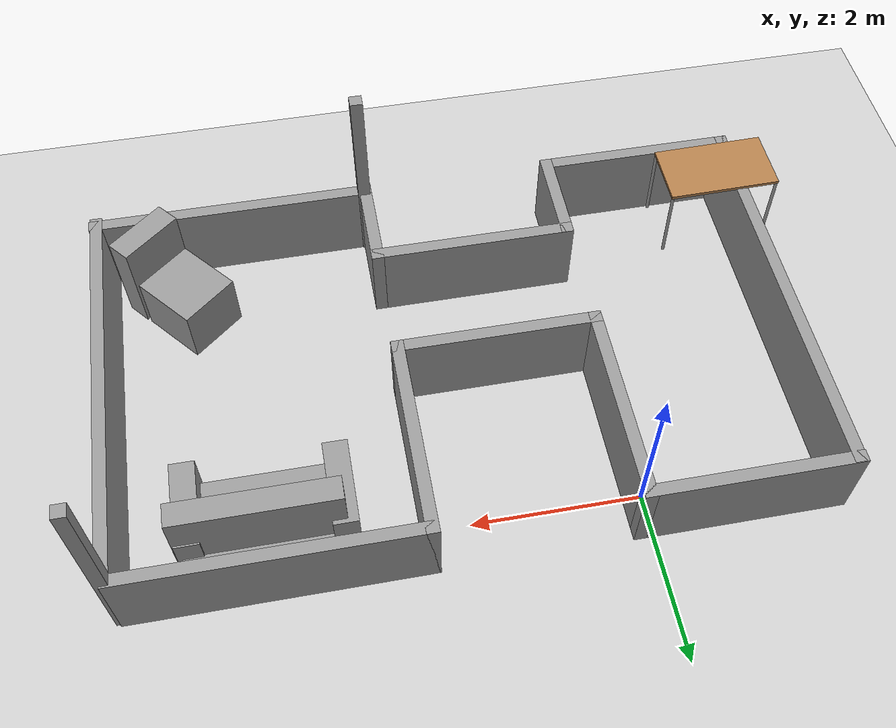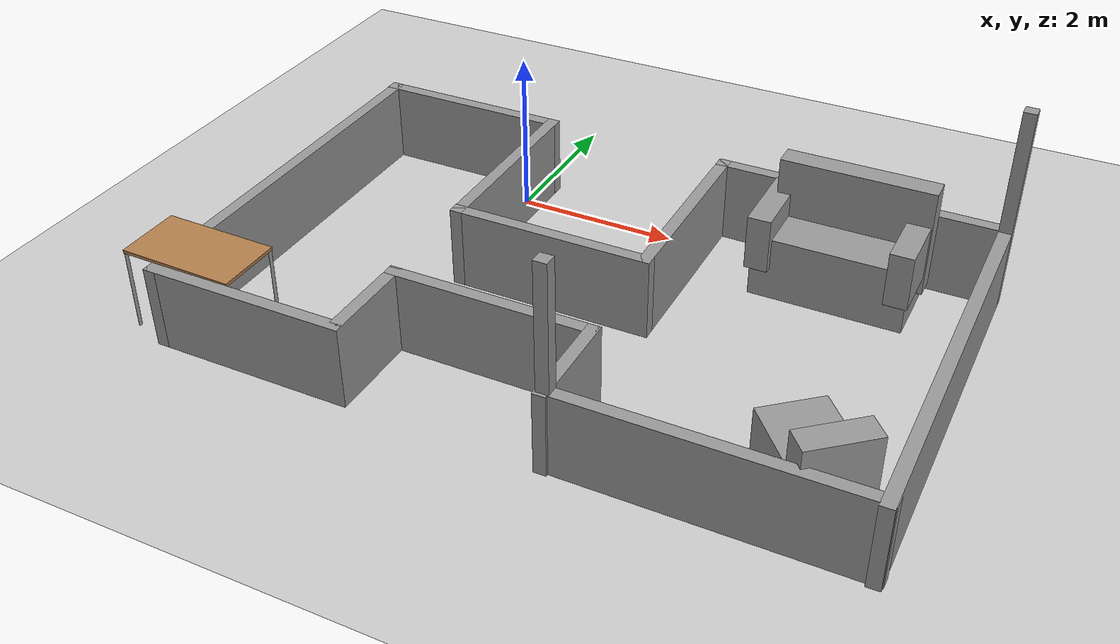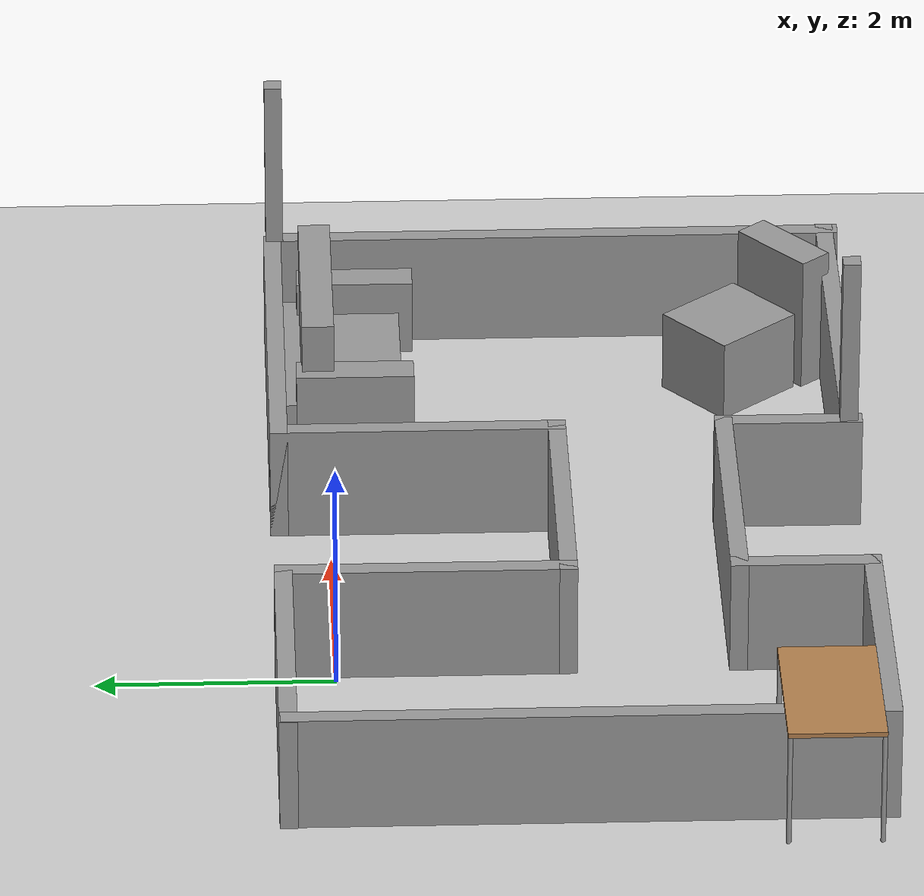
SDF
<sdf version="1.6">
 <world name="default">
  <light name="sun" type="directional">
   <pose>0 0 10 0 -0 0</pose>
   <diffuse>0.8 0.8 0.8 1</diffuse>
   <specular>0.1 0.1 0.1 1</specular>
   <attenuation>
    <range>1000</range>
    <constant>0.9</constant>
    <linear>0.01</linear>
    <quadratic>0.001</quadratic>
   </attenuation>
   <direction>-0.5 0.5 -1</direction>
  </light>
  <model name="ground_plane">
   <static>1</static>
   <link name="link">
    <collision name="collision">
     <geometry><plane><normal>0 0 1</normal><size>100 100</size></plane></geometry>
     <surface><friction><ode><mu>100</mu><mu2>50</mu2></ode></friction></surface>
    </collision>
    <visual name="visual">
     <cast_shadows>0</cast_shadows>
     <geometry><plane><normal>0 0 1</normal><size>100 100</size></plane></geometry>
     <material>
      <script><uri>file://media/materials/scripts/gazebo.material</uri><name>Gazebo/Grey</name></script>
     </material>
    </visual>
   </link>
  </model>
  <gravity>0 0 -9.8</gravity>
  <magnetic_field>6e-06 2.3e-05 -4.2e-05</magnetic_field>
  <atmosphere type="adiabatic"/>
  <physics name="default_physics" default="0" type="ode">
   <max_step_size>0.001</max_step_size>
   <real_time_factor>1</real_time_factor>
   <real_time_update_rate>1000</real_time_update_rate>
  </physics>
  <scene><ambient>0.4 0.4 0.4 1</ambient><background>0.7 0.7 0.7 1</background><shadows>1</shadows></scene>
  <spherical_coordinates>
   <surface_model>EARTH_WGS84</surface_model>
   <latitude_deg>0</latitude_deg>
   <longitude_deg>0</longitude_deg>
   <elevation>0</elevation>
   <heading_deg>0</heading_deg>
  </spherical_coordinates>
  <model name="popcan_arena">
   <pose>1.85412 -2.00368 0 0 -0 0</pose>
   <link name="Wall_1">
    <collision name="Wall_1_Collision">
     <geometry><box><size>5 0.15 1</size></box></geometry>
     <pose>0 0 0.5 0 -0 0</pose>
    </collision>
    <visual name="Wall_1_Visual">
     <pose>0 0 0.5 0 -0 0</pose>
     <geometry><box><size>5 0.15 1</size></box></geometry>
     <material>
      <script><uri>file://media/materials/scripts/gazebo.material</uri><name>Gazebo/Grey</name></script>
      <ambient>1 1 1 1</ambient>
     </material>
    </visual>
    <pose>4.04509 -0.01 0 0 -0 1.5708</pose>
   </link>
   <link name="Wall_2">
    <collision name="Wall_2_Collision">
     <geometry><box><size>0.15 0.15 2.5</size></box></geometry>
     <pose>0 0 1.25 0 -0 0</pose>
    </collision>
    <visual name="Wall_2_Visual">
     <pose>0 0 1.25 0 -0 0</pose>
     <geometry><box><size>0.15 0.15 2.5</size></box></geometry>
     <material>
      <script><uri>file://media/materials/scripts/gazebo.material</uri><name>Gazebo/Grey</name></script>
      <ambient>1 1 1 1</ambient>
     </material>
    </visual>
    <pose>4.04509 2.415 0 0 -0 0</pose>
   </link>
   <link name="Wall_26">
    <collision name="Wall_26_Collision">
     <geometry><box><size>0.15 0.15 2.5</size></box></geometry>
     <pose>0 0 1.25 0 -0 0</pose>
    </collision>
    <visual name="Wall_26_Visual">
     <pose>0 0 1.25 0 -0 0</pose>
     <geometry><box><size>0.15 0.15 2.5</size></box></geometry>
     <material>
      <script><uri>file://media/materials/scripts/gazebo.material</uri><name>Gazebo/Grey</name></script>
      <ambient>1 1 1 1</ambient>
     </material>
    </visual>
    <pose>0.695085 -2.385 0 0 -0 0</pose>
   </link>
   <link name="Wall_28">
    <collision name="Wall_28_Collision">
     <geometry><box><size>2.5 0.15 1</size></box></geometry>
     <pose>0 0 0.5 0 -0 0</pose>
    </collision>
    <visual name="Wall_28_Visual">
     <pose>0 0 0.5 0 -0 0</pose>
     <geometry><box><size>2.5 0.15 1</size></box></geometry>
     <material>
      <script><uri>file://media/materials/scripts/gazebo.material</uri><name>Gazebo/Grey</name></script>
      <ambient>1 1 1 1</ambient>
     </material>
    </visual>
    <pose>-0.519915 -1.325 0 0 -0 3.14159</pose>
   </link>
   <link name="Wall_29">
    <collision name="Wall_29_Collision">
     <geometry><box><size>1.25 0.15 1</size></box></geometry>
     <pose>0 0 0.5 0 -0 0</pose>
    </collision>
    <visual name="Wall_29_Visual">
     <pose>0 0 0.5 0 -0 0</pose>
     <geometry><box><size>1.25 0.15 1</size></box></geometry>
     <material>
      <script><uri>file://media/materials/scripts/gazebo.material</uri><name>Gazebo/Grey</name></script>
      <ambient>1 1 1 1</ambient>
     </material>
    </visual>
    <pose>-1.69491 -1.875 0 0 0 -1.5708</pose>
   </link>
   <link name="Wall_30">
    <collision name="Wall_30_Collision">
     <geometry><box><size>2.5 0.15 1</size></box></geometry>
     <pose>0 0 0.5 0 -0 0</pose>
    </collision>
    <visual name="Wall_30_Visual">
     <pose>0 0 0.5 0 -0 0</pose>
     <geometry><box><size>2.5 0.15 1</size></box></geometry>
     <material>
      <script><uri>file://media/materials/scripts/gazebo.material</uri><name>Gazebo/Grey</name></script>
      <ambient>1 1 1 1</ambient>
     </material>
    </visual>
    <pose>-2.86992 -2.425 0 0 -0 3.14159</pose>
   </link>
   <link name="Wall_33">
    <collision name="Wall_33_Collision">
     <geometry><box><size>5 0.15 1</size></box></geometry>
     <pose>0 0 0.5 0 -0 0</pose>
    </collision>
    <visual name="Wall_33_Visual">
     <pose>0 0 0.5 0 -0 0</pose>
     <geometry><box><size>5 0.15 1</size></box></geometry>
     <material>
      <script><uri>file://media/materials/scripts/gazebo.material</uri><name>Gazebo/Grey</name></script>
      <ambient>1 1 1 1</ambient>
     </material>
    </visual>
    <pose>-4.04491 0 0 0 -0 1.5708</pose>
   </link>
   <link name="Wall_35">
    <collision name="Wall_35_Collision">
     <geometry><box><size>3.5 0.15 1</size></box></geometry>
     <pose>0 0 0.5 0 -0 0</pose>
    </collision>
    <visual name="Wall_35_Visual">
     <pose>0 0 0.5 0 -0 0</pose>
     <geometry><box><size>3.5 0.15 1</size></box></geometry>
     <material>
      <script><uri>file://media/materials/scripts/gazebo.material</uri><name>Gazebo/Grey</name></script>
      <ambient>1 1 1 1</ambient>
     </material>
    </visual>
    <pose>2.32009 2.435 0 0 -0 0</pose>
   </link>
   <link name="Wall_4">
    <collision name="Wall_4_Collision">
     <geometry><box><size>2.5 0.15 1</size></box></geometry>
     <pose>0 0 0.5 0 -0 0</pose>
    </collision>
    <visual name="Wall_4_Visual">
     <pose>0 0 0.5 0 -0 0</pose>
     <geometry><box><size>2.5 0.15 1</size></box></geometry>
     <material>
      <script><uri>file://media/materials/scripts/gazebo.material</uri><name>Gazebo/Grey</name></script>
      <ambient>1 1 1 1</ambient>
     </material>
    </visual>
    <pose>0.645085 1.26 0 0 0 -1.5708</pose>
   </link>
   <link name="Wall_41">
    <collision name="Wall_41_Collision">
     <geometry><box><size>1.25 0.15 1</size></box></geometry>
     <pose>0 0 0.5 0 -0 0</pose>
    </collision>
    <visual name="Wall_41_Visual">
     <pose>0 0 0.5 0 -0 0</pose>
     <geometry><box><size>1.25 0.15 1</size></box></geometry>
     <material>
      <script><uri>file://media/materials/scripts/gazebo.material</uri><name>Gazebo/Grey</name></script>
      <ambient>1 1 1 1</ambient>
     </material>
    </visual>
    <pose>0.675085 -1.875 0 0 0 -1.5708</pose>
   </link>
   <link name="Wall_43">
    <collision name="Wall_43_Collision">
     <geometry><box><size>3.5 0.15 1</size></box></geometry>
     <pose>0 0 0.5 0 -0 0</pose>
    </collision>
    <visual name="Wall_43_Visual">
     <pose>0 0 0.5 0 -0 0</pose>
     <geometry><box><size>3.5 0.15 1</size></box></geometry>
     <material>
      <script><uri>file://media/materials/scripts/gazebo.material</uri><name>Gazebo/Grey</name></script>
      <ambient>1 1 1 1</ambient>
     </material>
    </visual>
    <pose>2.38008 -2.395 0 0 -0 3.14159</pose>
   </link>
   <link name="Wall_5">
    <collision name="Wall_5_Collision">
     <geometry><box><size>2.5 0.15 1</size></box></geometry>
     <pose>0 0 0.5 0 -0 0</pose>
    </collision>
    <visual name="Wall_5_Visual">
     <pose>0 0 0.5 0 -0 0</pose>
     <geometry><box><size>2.5 0.15 1</size></box></geometry>
     <material>
      <script><uri>file://media/materials/scripts/gazebo.material</uri><name>Gazebo/Grey</name></script>
      <ambient>1 1 1 1</ambient>
     </material>
    </visual>
    <pose>-0.529915 0.085 0 0 -0 3.14159</pose>
   </link>
   <link name="Wall_6">
    <collision name="Wall_6_Collision">
     <geometry><box><size>2.5 0.15 1</size></box></geometry>
     <pose>0 0 0.5 0 -0 0</pose>
    </collision>
    <visual name="Wall_6_Visual">
     <pose>0 0 0.5 0 -0 0</pose>
     <geometry><box><size>2.5 0.15 1</size></box></geometry>
     <material>
      <script><uri>file://media/materials/scripts/gazebo.material</uri><name>Gazebo/Grey</name></script>
      <ambient>1 1 1 1</ambient>
     </material>
    </visual>
    <pose>-1.70491 1.26 0 0 -0 1.5708</pose>
   </link>
   <link name="Wall_7">
    <collision name="Wall_7_Collision">
     <geometry><box><size>2.50034 0.15 1</size></box></geometry>
     <pose>0 0 0.5 0 -0 0</pose>
    </collision>
    <visual name="Wall_7_Visual">
     <pose>0 0 0.5 0 -0 0</pose>
     <geometry><box><size>2.50034 0.15 1</size></box></geometry>
     <material>
      <script><uri>file://media/materials/scripts/gazebo.material</uri><name>Gazebo/Grey</name></script>
      <ambient>1 1 1 1</ambient>
     </material>
    </visual>
    <pose>-2.87992 2.435 0 0 -0 3.14159</pose>
   </link>
   <static>1</static>
  </model>
  <model name="table">
   <static>0</static>
   <link name="link">
    <collision name="surface">
     <pose>0 0 1 0 -0 0</pose>
     <geometry><box><size>1.5 0.8 0.03</size></box></geometry>
     <surface><friction><ode><mu>0.6</mu><mu2>0.6</mu2></ode></friction></surface>
    </collision>
    <visual name="visual1">
     <pose>0 0 1 0 -0 0</pose>
     <geometry><box><size>1.4 0.8 0.04</size></box></geometry>
     <material>
      <script><uri>file://media/materials/scripts/gazebo.material</uri><name>Gazebo/Wood</name></script>
     </material>
    </visual>
    <collision name="front_left_leg">
     <pose>0.68 0.38 0.5 0 -0 0</pose>
     <geometry><cylinder><radius>0.02</radius><length>1</length></cylinder></geometry>
    </collision>
    <visual name="front_left_leg">
     <pose>0.68 0.38 0.5 0 -0 0</pose>
     <geometry><cylinder><radius>0.02</radius><length>1</length></cylinder></geometry>
     <material>
      <script><uri>file://media/materials/scripts/gazebo.material</uri><name>Gazebo/Grey</name></script>
     </material>
    </visual>
    <collision name="front_right_leg">
     <pose>0.68 -0.38 0.5 0 -0 0</pose>
     <geometry><cylinder><radius>0.02</radius><length>1</length></cylinder></geometry>
    </collision>
    <visual name="front_right_leg">
     <pose>0.68 -0.38 0.5 0 -0 0</pose>
     <geometry><cylinder><radius>0.02</radius><length>1</length></cylinder></geometry>
     <material>
      <script><uri>file://media/materials/scripts/gazebo.material</uri><name>Gazebo/Grey</name></script>
     </material>
    </visual>
    <collision name="back_right_leg">
     <pose>-0.68 -0.38 0.5 0 -0 0</pose>
     <geometry><cylinder><radius>0.02</radius><length>1</length></cylinder></geometry>
    </collision>
    <visual name="back_right_leg">
     <pose>-0.68 -0.38 0.5 0 -0 0</pose>
     <geometry><cylinder><radius>0.02</radius><length>1</length></cylinder></geometry>
     <material>
      <script><uri>file://media/materials/scripts/gazebo.material</uri><name>Gazebo/Grey</name></script>
     </material>
    </visual>
    <collision name="back_left_leg">
     <pose>-0.68 0.38 0.5 0 -0 0</pose>
     <geometry><cylinder><radius>0.02</radius><length>1</length></cylinder></geometry>
    </collision>
    <visual name="back_left_leg">
     <pose>-0.68 0.38 0.5 0 -0 0</pose>
     <geometry><cylinder><radius>0.02</radius><length>1</length></cylinder></geometry>
     <material>
      <script><uri>file://media/materials/scripts/gazebo.material</uri><name>Gazebo/Grey</name></script>
     </material>
    </visual>
    <inertial>
     <inertia><ixx>1</ixx><ixy>0</ixy><ixz>0</ixz><iyy>1</iyy><iyz>0</iyz><izz>1</izz></inertia>
     <mass>1</mass>
    </inertial>
   </link>
   <pose>-1.98269 -3.95326 0.012472 8e-06 0.017814 0.000461</pose>
  </model>
  <model name="couch">
   <link name="link_0">
    <pose>-0.01902 -0.002099 -0.285741 0 -0 0</pose>
    <inertial>
     <mass>1.44585</mass>
     <inertia>
      <ixx>0.195146</ixx>
      <ixy>0</ixy>
      <ixz>0</ixz>
      <iyy>0.481156</iyy>
      <iyz>0</iyz>
      <izz>0.526986</izz>
     </inertia>
    </inertial>
    <visual name="visual">
     <geometry><box><size>1.83678 1 0.787161</size></box></geometry>
     <material>
      <lighting>1</lighting>
      <script><uri>file://media/materials/scripts/gazebo.material</uri><name>Gazebo/Grey</name></script>
      <ambient>0.3 0.3 0.3 1</ambient>
      <diffuse>0.7 0.7 0.7 1</diffuse>
      <specular>0.01 0.01 0.01 1</specular>
      <emissive>0 0 0 1</emissive>
     </material>
    </visual>
    <collision name="collision">
     <geometry><box><size>1.83678 1 0.787161</size></box></geometry>
     <surface>
      <friction>
       <ode><mu>1</mu><mu2>1</mu2><fdir1>0 0 0</fdir1><slip1>0</slip1><slip2>0</slip2></ode>
       <torsional>
        <coefficient>1</coefficient>
        <patch_radius>0</patch_radius>
        <surface_radius>0</surface_radius>
        <use_patch_radius>1</use_patch_radius>
        <ode><slip>0</slip></ode>
       </torsional>
      </friction>
      <bounce><restitution_coefficient>0</restitution_coefficient><threshold>1e+06</threshold></bounce>
      <contact>
       <collide_without_contact>0</collide_without_contact>
       <collide_without_contact_bitmask>1</collide_without_contact_bitmask>
       <collide_bitmask>1</collide_bitmask>
       <ode>
        <soft_cfm>0</soft_cfm>
        <soft_erp>0.2</soft_erp>
        <kp>1e+13</kp>
        <kd>1</kd>
        <max_vel>0.01</max_vel>
        <min_depth>0</min_depth>
       </ode>
       <bullet>
        <split_impulse>1</split_impulse>
        <split_impulse_penetration_threshold>-0.01</split_impulse_penetration_threshold>
        <soft_cfm>0</soft_cfm>
        <soft_erp>0.2</soft_erp>
        <kp>1e+13</kp>
        <kd>1</kd>
       </bullet>
      </contact>
     </surface>
    </collision>
   </link>
   <link name="link_1">
    <pose>-0.837255 -0.094169 0.060748 0 -0 0</pose>
    <inertial>
     <mass>0.187695</mass>
     <inertia>
      <ixx>0.0226851</ixx>
      <ixy>0</ixy>
      <ixz>0</ixz>
      <iyy>0.00826742</iyy>
      <iyz>0</iyz>
      <izz>0.0168649</izz>
     </inertia>
    </inertial>
    <visual name="visual">
     <geometry><box><size>0.279699 1 0.671069</size></box></geometry>
     <material>
      <lighting>1</lighting>
      <script><uri>file://media/materials/scripts/gazebo.material</uri><name>Gazebo/Grey</name></script>
      <ambient>0.3 0.3 0.3 1</ambient>
      <diffuse>0.7 0.7 0.7 1</diffuse>
      <specular>0.01 0.01 0.01 1</specular>
      <emissive>0 0 0 1</emissive>
     </material>
    </visual>
    <collision name="collision">
     <geometry><box><size>0.279699 1 0.671069</size></box></geometry>
     <surface>
      <friction>
       <ode><mu>1</mu><mu2>1</mu2><fdir1>0 0 0</fdir1><slip1>0</slip1><slip2>0</slip2></ode>
       <torsional>
        <coefficient>1</coefficient>
        <patch_radius>0</patch_radius>
        <surface_radius>0</surface_radius>
        <use_patch_radius>1</use_patch_radius>
        <ode><slip>0</slip></ode>
       </torsional>
      </friction>
      <bounce><restitution_coefficient>0</restitution_coefficient><threshold>1e+06</threshold></bounce>
      <contact>
       <collide_without_contact>0</collide_without_contact>
       <collide_without_contact_bitmask>1</collide_without_contact_bitmask>
       <collide_bitmask>1</collide_bitmask>
       <ode>
        <soft_cfm>0</soft_cfm>
        <soft_erp>0.2</soft_erp>
        <kp>1e+13</kp>
        <kd>1</kd>
        <max_vel>0.01</max_vel>
        <min_depth>0</min_depth>
       </ode>
       <bullet>
        <split_impulse>1</split_impulse>
        <split_impulse_penetration_threshold>-0.01</split_impulse_penetration_threshold>
        <soft_cfm>0</soft_cfm>
        <soft_erp>0.2</soft_erp>
        <kp>1e+13</kp>
        <kd>1</kd>
       </bullet>
      </contact>
     </surface>
    </collision>
   </link>
   <link name="link_1_clone">
    <pose>0.806895 -0.123312 0.060748 0 -0 0</pose>
    <inertial>
     <mass>0.187695</mass>
     <inertia>
      <ixx>0.0226851</ixx>
      <ixy>0</ixy>
      <ixz>0</ixz>
      <iyy>0.00826742</iyy>
      <iyz>0</iyz>
      <izz>0.0168649</izz>
     </inertia>
    </inertial>
    <visual name="visual">
     <geometry><box><size>0.279699 1 0.671069</size></box></geometry>
     <material>
      <lighting>1</lighting>
      <script><uri>file://media/materials/scripts/gazebo.material</uri><name>Gazebo/Grey</name></script>
      <ambient>0.3 0.3 0.3 1</ambient>
      <diffuse>0.7 0.7 0.7 1</diffuse>
      <specular>0.01 0.01 0.01 1</specular>
      <emissive>0 0 0 1</emissive>
      <shader type="pixel"/>
     </material>
    </visual>
    <collision name="collision">
     <geometry><box><size>0.279699 1 0.671069</size></box></geometry>
     <surface>
      <friction>
       <ode><mu>1</mu><mu2>1</mu2><fdir1>0 0 0</fdir1><slip1>0</slip1><slip2>0</slip2></ode>
       <torsional>
        <coefficient>1</coefficient>
        <patch_radius>0</patch_radius>
        <surface_radius>0</surface_radius>
        <use_patch_radius>1</use_patch_radius>
        <ode><slip>0</slip></ode>
       </torsional>
      </friction>
      <bounce><restitution_coefficient>0</restitution_coefficient><threshold>1e+06</threshold></bounce>
      <contact>
       <collide_without_contact>0</collide_without_contact>
       <collide_without_contact_bitmask>1</collide_without_contact_bitmask>
       <collide_bitmask>1</collide_bitmask>
       <ode>
        <soft_cfm>0</soft_cfm>
        <soft_erp>0.2</soft_erp>
        <kp>1e+13</kp>
        <kd>1</kd>
        <max_vel>0.01</max_vel>
        <min_depth>0</min_depth>
       </ode>
       <bullet>
        <split_impulse>1</split_impulse>
        <split_impulse_penetration_threshold>-0.01</split_impulse_penetration_threshold>
        <soft_cfm>0</soft_cfm>
        <soft_erp>0.2</soft_erp>
        <kp>1e+13</kp>
        <kd>1</kd>
       </bullet>
      </contact>
     </surface>
    </collision>
   </link>
   <link name="link_2">
    <pose>0.049389 0.21958 0.164245 0 -0 0</pose>
    <inertial>
     <mass>0.659998</mass>
     <inertia>
      <ixx>0.100915</ixx>
      <ixy>0</ixy>
      <ixz>0</ixz>
      <iyy>0.279803</iyy>
      <iyz>0</iyz>
      <izz>0.187069</izz>
     </inertia>
    </inertial>
    <visual name="visual">
     <geometry><box><size>1.82397 0.272721 1.32681</size></box></geometry>
     <material>
      <lighting>1</lighting>
      <script><uri>file://media/materials/scripts/gazebo.material</uri><name>Gazebo/Grey</name></script>
      <ambient>0.3 0.3 0.3 1</ambient>
      <diffuse>0.7 0.7 0.7 1</diffuse>
      <specular>0.01 0.01 0.01 1</specular>
      <emissive>0 0 0 1</emissive>
     </material>
    </visual>
    <collision name="collision">
     <geometry><box><size>1.82397 0.272721 1.32681</size></box></geometry>
     <surface>
      <friction>
       <ode><mu>1</mu><mu2>1</mu2><fdir1>0 0 0</fdir1><slip1>0</slip1><slip2>0</slip2></ode>
       <torsional>
        <coefficient>1</coefficient>
        <patch_radius>0</patch_radius>
        <surface_radius>0</surface_radius>
        <use_patch_radius>1</use_patch_radius>
        <ode><slip>0</slip></ode>
       </torsional>
      </friction>
      <bounce><restitution_coefficient>0</restitution_coefficient><threshold>1e+06</threshold></bounce>
      <contact>
       <collide_without_contact>0</collide_without_contact>
       <collide_without_contact_bitmask>1</collide_without_contact_bitmask>
       <collide_bitmask>1</collide_bitmask>
       <ode>
        <soft_cfm>0</soft_cfm>
        <soft_erp>0.2</soft_erp>
        <kp>1e+13</kp>
        <kd>1</kd>
        <max_vel>0.01</max_vel>
        <min_depth>0</min_depth>
       </ode>
       <bullet>
        <split_impulse>1</split_impulse>
        <split_impulse_penetration_threshold>-0.01</split_impulse_penetration_threshold>
        <soft_cfm>0</soft_cfm>
        <soft_erp>0.2</soft_erp>
        <kp>1e+13</kp>
        <kd>1</kd>
       </bullet>
      </contact>
     </surface>
    </collision>
   </link>
   <static>0</static>
   <pose>4.20967 -0.142029 0.679318 -8e-06 -0 -0.000334</pose>
  </model>
  <model name="chair">
   <link name="link_0">
    <pose>0.00602 0.317394 -0.068747 0 -0 0</pose>
    <inertial>
     <mass>0.46727</mass>
     <inertia>
      <ixx>0.0476836</ixx>
      <ixy>0</ixy>
      <ixz>0</ixz>
      <iyy>0.0433394</iyy>
      <iyz>0</iyz>
      <izz>0.0508582</izz>
     </inertia>
    </inertial>
    <visual name="visual">
     <geometry><box><size>0.772827 0.841913 0.718158</size></box></geometry>
     <material>
      <lighting>1</lighting>
      <script><uri>file://media/materials/scripts/gazebo.material</uri><name>Gazebo/Grey</name></script>
      <ambient>0.3 0.3 0.3 1</ambient>
      <diffuse>0.7 0.7 0.7 1</diffuse>
      <specular>0.01 0.01 0.01 1</specular>
      <emissive>0 0 0 1</emissive>
     </material>
    </visual>
    <collision name="collision">
     <geometry><box><size>0.772827 0.841913 0.718158</size></box></geometry>
     <surface>
      <friction>
       <ode><mu>1</mu><mu2>1</mu2><fdir1>0 0 0</fdir1><slip1>0</slip1><slip2>0</slip2></ode>
       <torsional>
        <coefficient>1</coefficient>
        <patch_radius>0</patch_radius>
        <surface_radius>0</surface_radius>
        <use_patch_radius>1</use_patch_radius>
        <ode><slip>0</slip></ode>
       </torsional>
      </friction>
      <bounce><restitution_coefficient>0</restitution_coefficient><threshold>1e+06</threshold></bounce>
      <contact>
       <collide_without_contact>0</collide_without_contact>
       <collide_without_contact_bitmask>1</collide_without_contact_bitmask>
       <collide_bitmask>1</collide_bitmask>
       <ode>
        <soft_cfm>0</soft_cfm>
        <soft_erp>0.2</soft_erp>
        <kp>1e+13</kp>
        <kd>1</kd>
        <max_vel>0.01</max_vel>
        <min_depth>0</min_depth>
       </ode>
       <bullet>
        <split_impulse>1</split_impulse>
        <split_impulse_penetration_threshold>-0.01</split_impulse_penetration_threshold>
        <soft_cfm>0</soft_cfm>
        <soft_erp>0.2</soft_erp>
        <kp>1e+13</kp>
        <kd>1</kd>
       </bullet>
      </contact>
     </surface>
    </collision>
   </link>
   <link name="link_1">
    <pose>-0.006027 -0.317398 0.068747 0 -0 0</pose>
    <inertial>
     <mass>0.35363</mass>
     <inertia>
      <ixx>0.0617854</ixx>
      <ixy>0</ixy>
      <ixz>0</ixz>
      <iyy>0.0784715</iyy>
      <iyz>0</iyz>
      <izz>0.0222576</izz>
     </inertia>
    </inertial>
    <visual name="visual">
     <geometry><box><size>0.812859 0.307459 1.41495</size></box></geometry>
     <material>
      <lighting>1</lighting>
      <script><uri>file://media/materials/scripts/gazebo.material</uri><name>Gazebo/Grey</name></script>
      <ambient>0.3 0.3 0.3 1</ambient>
      <diffuse>0.7 0.7 0.7 1</diffuse>
      <specular>0.01 0.01 0.01 1</specular>
      <emissive>0 0 0 1</emissive>
     </material>
    </visual>
    <collision name="collision">
     <geometry><box><size>0.812859 0.307459 1.41495</size></box></geometry>
     <surface>
      <friction>
       <ode><mu>1</mu><mu2>1</mu2><fdir1>0 0 0</fdir1><slip1>0</slip1><slip2>0</slip2></ode>
       <torsional>
        <coefficient>1</coefficient>
        <patch_radius>0</patch_radius>
        <surface_radius>0</surface_radius>
        <use_patch_radius>1</use_patch_radius>
        <ode><slip>0</slip></ode>
       </torsional>
      </friction>
      <bounce><restitution_coefficient>0</restitution_coefficient><threshold>1e+06</threshold></bounce>
      <contact>
       <collide_without_contact>0</collide_without_contact>
       <collide_without_contact_bitmask>1</collide_without_contact_bitmask>
       <collide_bitmask>1</collide_bitmask>
       <ode>
        <soft_cfm>0</soft_cfm>
        <soft_erp>0.2</soft_erp>
        <kp>1e+13</kp>
        <kd>1</kd>
        <max_vel>0.01</max_vel>
        <min_depth>0</min_depth>
       </ode>
       <bullet>
        <split_impulse>1</split_impulse>
        <split_impulse_penetration_threshold>-0.01</split_impulse_penetration_threshold>
        <soft_cfm>0</soft_cfm>
        <soft_erp>0.2</soft_erp>
        <kp>1e+13</kp>
        <kd>1</kd>
       </bullet>
      </contact>
     </surface>
    </collision>
   </link>
   <static>0</static>
   <pose>5.08793 -3.75825 0.427826 0 -0 0.705865</pose>
  </model>
 </world>
</sdf>
